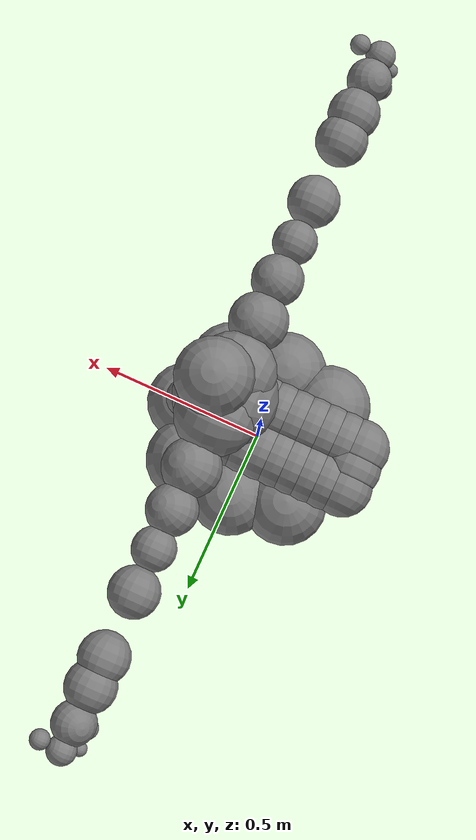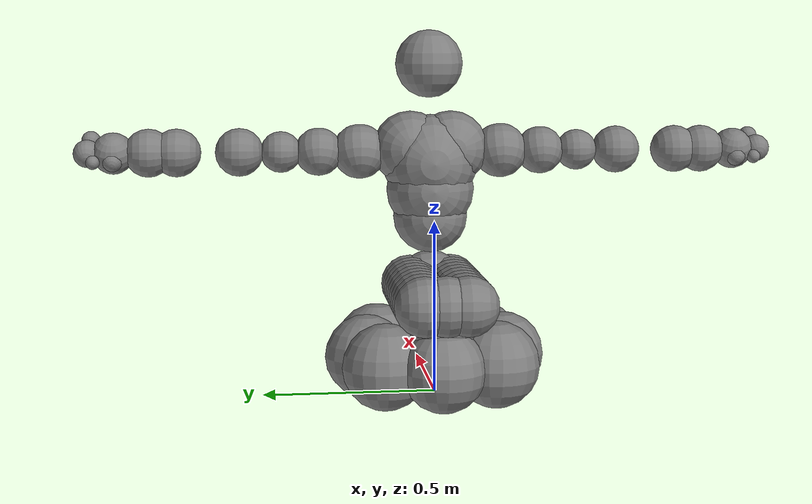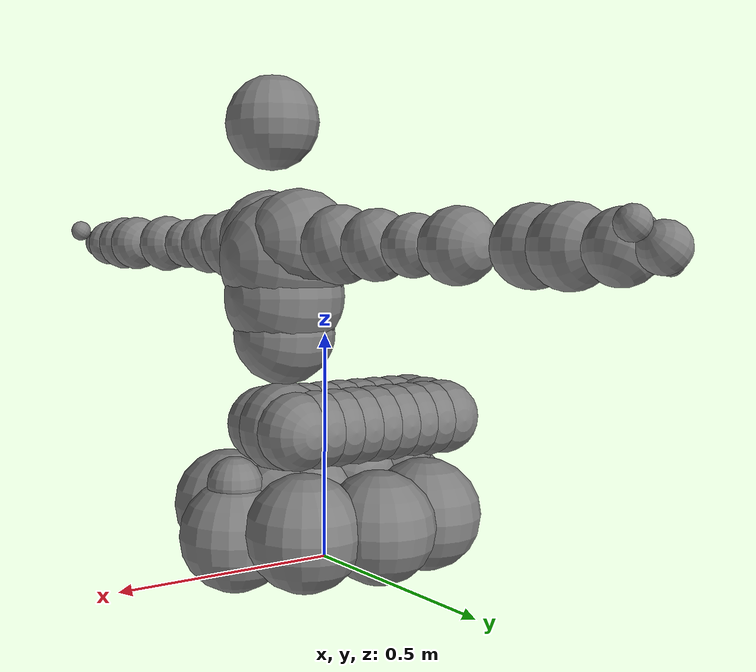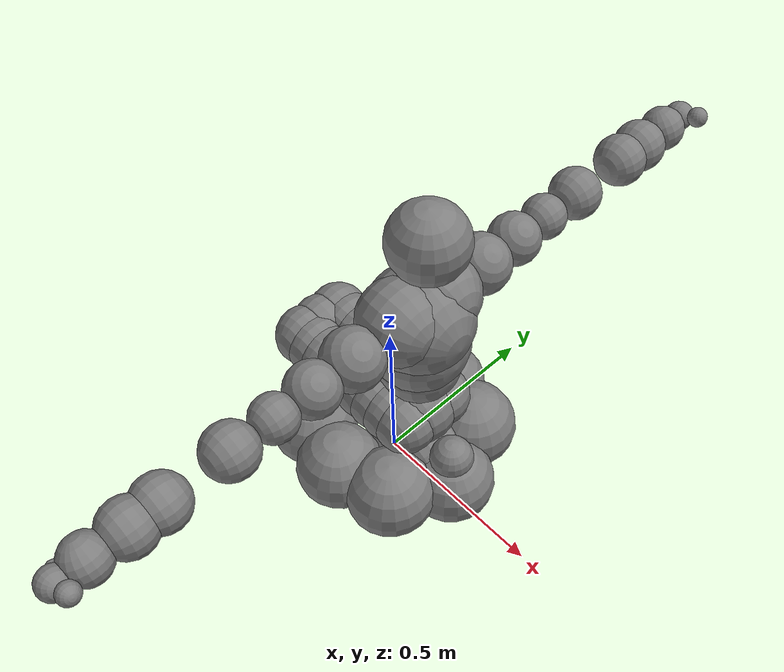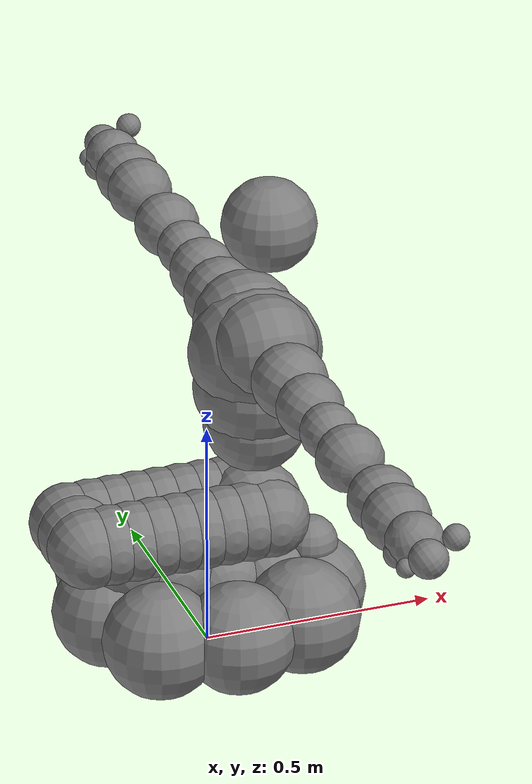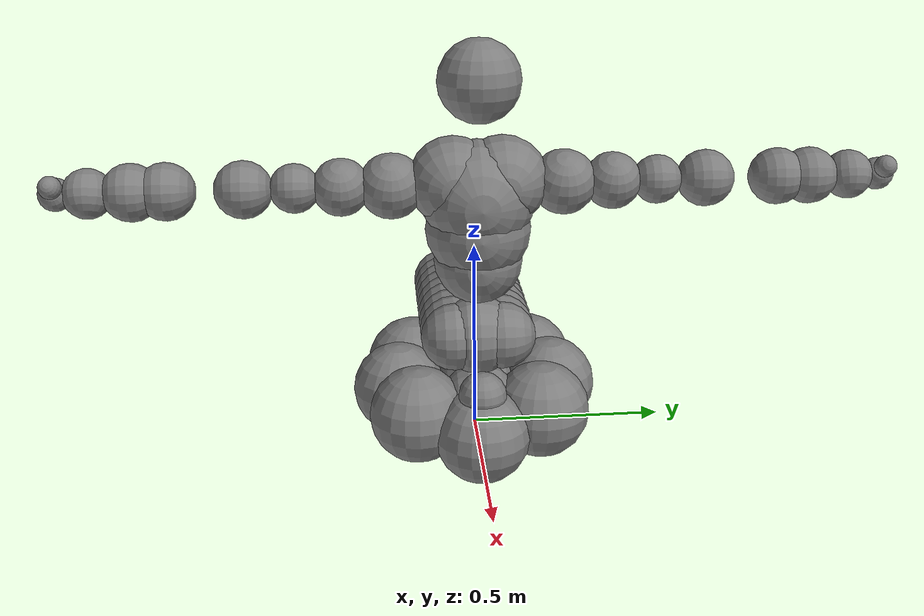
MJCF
<mujoco model="galbot_one_golf">
  <compiler angle="radian"/>

  <worldbody>
    <geom size="0.12" pos="0 -0.2 0.11"/>
    <geom size="0.12" pos="0 0.2 0.11"/>
    <geom size="0.06" pos="0.23 0 0.19"/>
    <geom size="0.12" pos="0.23 0 0.08"/>
    <geom size="0.12" pos="-0.219 0 0.11"/>
    <geom size="0.124" pos="-0.157 -0.157 0.11"/>
    <geom size="0.123" pos="0.157 0.157 0.11"/>
    <geom size="0.123" pos="-0.157 0.157 0.11"/>
    <geom size="0.123" pos="0.157 -0.157 0.11"/>
    <body name="leg_link1" pos="0.134 0 0.1325" quat="-0.135279 0.135279 0.694046 0.694046">
      <inertial pos="0.21883 0.00219 -0.0046" quat="0.505152 0.498924 0.496342 0.499541" mass="5.28" diaginertia="0.464407 0.460835 0.0244475"/>
      <joint name="leg_joint1" pos="0 0 0" axis="0 0 1" range="0 0.9374" actuatorfrcrange="-169 169"/>
      <geom size="0.095"/>
      <geom size="0.095" pos="0.1 -0.03 0"/>
      <geom size="0.095" pos="0.22 -0.03 0"/>
      <geom size="0.095" pos="0.33 -0.03 0"/>
      <body name="leg_link2" pos="0.45 0 0" quat="0 0.19131 0.98153 0">
        <inertial pos="0.19484 0 0" quat="0.500001 0.500001 0.500047 0.499951" mass="3.3" diaginertia="0.232316 0.203237 0.0415624"/>
        <joint name="leg_joint2" pos="0 0 0" axis="0 0 1" range="0 2.5847" actuatorfrcrange="-169 169"/>
        <geom size="0.085"/>
        <geom size="0.085" pos="0 0 0.06"/>
        <geom size="0.085" pos="0 0 -0.06"/>
        <geom size="0.085" pos="0.05 0 0.06"/>
        <geom size="0.085" pos="0.05 0 -0.06"/>
        <geom size="0.085" pos="0.1 0 0.06"/>
        <geom size="0.085" pos="0.1 0 -0.06"/>
        <geom size="0.085" pos="0.15 0 0.06"/>
        <geom size="0.085" pos="0.15 0 -0.06"/>
        <geom size="0.085" pos="0.2 0 0.06"/>
        <geom size="0.085" pos="0.2 0 -0.06"/>
        <geom size="0.085" pos="0.25 0 0.06"/>
        <geom size="0.085" pos="0.25 0 -0.06"/>
        <geom size="0.085" pos="0.3 0 0.06"/>
        <geom size="0.085" pos="0.3 0 -0.06"/>
        <geom size="0.085" pos="0.35 0 0.06"/>
        <geom size="0.085" pos="0.35 0 -0.06"/>
        <geom size="0.085" pos="0.4 0 0.06"/>
        <geom size="0.085" pos="0.4 0 -0.06"/>
        <geom size="0.085" pos="0.4 0 0"/>
        <body name="leg_link3" pos="0.39 0 0" quat="0 0 1 0">
          <inertial pos="2e-05 0.01881 -0.011" quat="0.707348 0.706863 0.00128484 -0.000928877" mass="1.76" diaginertia="0.0110244 0.0106222 0.00878281"/>
          <joint name="leg_joint3" pos="0 0 0" axis="0 0 1" range="0 2.3262" actuatorfrcrange="-84 84"/>
          <geom size="0.1"/>
          <body name="leg_link4" pos="0 0.224 0" quat="0.5 -0.5 -0.5 -0.5">
            <inertial pos="0 -0.00599 -0.06877" quat="0.707107 0.000365744 -0.000365744 0.707107" mass="0.72" diaginertia="0.00591483 0.00580757 0.00140049"/>
            <joint name="leg_joint4" pos="0 0 0" axis="0 0 1" range="-1.5906 1.5906" actuatorfrcrange="-30 30"/>
            <geom size="0.1"/>
            <body name="leg_link5" quat="0.707107 0.707107 0 0">
              <inertial pos="-0.0788442 0.0963352 -0.0395516" quat="0.438761 0.345678 -0.662967 0.498468" mass="6.03" diaginertia="0.368979 0.292426 0.0977147"/>
              <joint name="leg_joint5" pos="0 0 0" axis="0 0 1" range="-0.1645 0.1645" actuatorfrcrange="-30 30"/>
              <geom size="0.14" pos="0 0.14 0"/>
              <geom size="0.13" pos="0 0.06 0"/>
              <geom size="0.11" pos="0 -0.02 0"/>
              <geom size="0.11" pos="-0.06 0.18 0"/>
              <geom size="0.11" pos="0.06 0.18 0"/>
              <body name="left_arm_link1" pos="0.20843 0.172 0" quat="0.683013 0.183013 0.683013 0.183013">
                <inertial pos="0 0.00097 -0.01539" quat="0.79715 0.00675234 -0.00525079 0.60372" mass="1.6" diaginertia="0.00339705 0.00332448 0.00165189"/>
                <joint name="left_arm_joint1" pos="0 0 0" axis="0 0 1" range="-3.00433 3.00433" actuatorfrcrange="-60 60"/>
                <geom size="0.06"/>
                <body name="left_arm_link2" quat="0 0 0.707107 0.707107">
                  <inertial pos="0 0.09558 0.01015" quat="0.711079 0.703112 -9.72025e-05 0.000106239" mass="1.43" diaginertia="0.0193788 0.018954 0.00157693"/>
                  <joint name="left_arm_joint2" pos="0 0 0" axis="0 0 1" range="-1.60806 1.60806" actuatorfrcrange="-60 60"/>
                  <geom size="0.08"/>
                  <geom size="0.07" pos="0 0.12 0"/>
                  <body name="left_arm_link3" pos="0 0.35 0" quat="-0.353553 0.353553 -0.612372 -0.612372">
                    <inertial pos="0 0.00088 -0.04936" quat="0.999988 0.00482265 -4.48243e-05 0.000919392" mass="1.43" diaginertia="0.0118746 0.0117886 0.00137053"/>
                    <joint name="left_arm_joint3" pos="0 0 0" axis="0 0 1" range="-2.91697 2.91697" actuatorfrcrange="-30 30"/>
                    <geom size="0.06" pos="0 0 -0.12"/>
                    <geom size="0.07"/>
                    <body name="left_arm_link4" quat="0 0 -0.707107 -0.707107">
                      <inertial pos="0 0.05614 0.01917" quat="0.731102 0.682267 -0.000806243 0.000896297" mass="1.1" diaginertia="0.00701388 0.00652468 0.00159506"/>
                      <joint name="left_arm_joint4" pos="0 0 0" axis="0 0 1" range="-2.56799 1.86986" actuatorfrcrange="-30 30"/>
                      <body name="left_arm_link5" pos="0 0.36 0" quat="0.707107 -0.707107 0 0">
                        <inertial pos="0.00044 0.00169 -0.13306" quat="0.999789 0.00430973 -0.00121985 0.0200303" mass="1.15" diaginertia="0.0258109 0.0253041 0.00115654"/>
                        <joint name="left_arm_joint5" pos="0 0 0" axis="0 0 1" range="-2.91697 2.91697" actuatorfrcrange="-10 10"/>
                        <geom size="0.07" pos="0 0 -0.18"/>
                        <geom size="0.07" pos="0 0 -0.1"/>
                        <body name="left_arm_link6" quat="0.5 0.5 0.5 -0.5">
                          <inertial pos="-0.00088 -0.00727 -0.00012" quat="0.113724 0.724032 0.0888356 0.674501" mass="0.47" diaginertia="0.000297618 0.000289132 0.000275439"/>
                          <joint name="left_arm_joint6" pos="0 0 0" axis="0 0 1" range="-0.822665 0.735398" actuatorfrcrange="-10 10"/>
                          <geom size="0.06"/>
                          <body name="left_arm_link7" quat="0.707107 0.707107 0 0">
                            <inertial pos="-0.05776 -0.00675 0.01135" quat="0.450248 0.595403 0.411647 0.522798" mass="0.8" diaginertia="0.00428143 0.00419004 0.00112119"/>
                            <joint name="left_arm_joint7" pos="0 0 0" axis="0 0 1" range="-1.5382 1.5382" actuatorfrcrange="-10 10"/>
                            <geom size="0.027" pos="-0.068 0 -0.068"/>
                            <geom size="0.04" pos="-0.074 0 0"/>
                            <geom size="0.02" pos="-0.055 0 0.045"/>
                            <geom size="0.03" pos="0 0 0.04"/>
                          </body>
                        </body>
                      </body>
                    </body>
                  </body>
                </body>
              </body>
              <body name="right_arm_link1" pos="-0.20843 0.172 0" quat="-0.183013 0.683013 0.183013 -0.683013">
                <inertial pos="0 -0.00097 -0.01539" quat="0.79715 0.00675234 -0.00525079 0.60372" mass="1.6" diaginertia="0.00339705 0.00332448 0.00165189"/>
                <joint name="right_arm_joint1" pos="0 0 0" axis="0 0 1" range="-3.00433 3.00433" actuatorfrcrange="-60 60"/>
                <geom size="0.05"/>
                <body name="right_arm_link2" quat="0 0 -0.707107 0.707107">
                  <inertial pos="0 -0.09558 0.01015" quat="0.711079 0.703112 -9.72025e-05 0.000106239" mass="1.43" diaginertia="0.0193788 0.018954 0.00157693"/>
                  <joint name="right_arm_joint2" pos="0 0 0" axis="0 0 1" range="-1.60806 1.60806" actuatorfrcrange="-60 60"/>
                  <geom size="0.08"/>
                  <geom size="0.07" pos="0 -0.12 0"/>
                  <body name="right_arm_link3" pos="0 -0.35 0" quat="0.353553 0.353553 0.612372 -0.612372">
                    <inertial pos="0 -0.00088 -0.04936" quat="0.999988 0.00482265 -4.48243e-05 0.000919392" mass="1.43" diaginertia="0.0118746 0.0117886 0.00137053"/>
                    <joint name="right_arm_joint3" pos="0 0 0" axis="0 0 1" range="-2.91697 2.91697" actuatorfrcrange="-30 30"/>
                    <geom size="0.06" pos="0 0 -0.12"/>
                    <geom size="0.07"/>
                    <body name="right_arm_link4" quat="0 0 -0.707107 0.707107">
                      <inertial pos="0 -0.05614 0.01917" quat="0.731102 0.682267 -0.000806243 0.000896297" mass="1.1" diaginertia="0.00701388 0.00652468 0.00159506"/>
                      <joint name="right_arm_joint4" pos="0 0 0" axis="0 0 1" range="-1.86986 2.56799" actuatorfrcrange="-30 30"/>
                      <body name="right_arm_link5" pos="0 -0.36 0" quat="0 0 -0.707107 0.707107">
                        <inertial pos="0.00044 0.00169 -0.13306" quat="0.999789 0.00430973 -0.00121985 0.0200303" mass="1.15" diaginertia="0.0258109 0.0253041 0.00115654"/>
                        <joint name="right_arm_joint5" pos="0 0 0" axis="0 0 1" range="-2.91697 2.91697" actuatorfrcrange="-10 10"/>
                        <geom size="0.07" pos="0 0 -0.18"/>
                        <geom size="0.07" pos="0 0 -0.1"/>
                        <body name="right_arm_link6" quat="0.5 0.5 0.5 -0.5">
                          <inertial pos="-0.00088 0.00727 -0.00012" quat="0.11308 0.723412 0.0892763 0.675217" mass="0.47" diaginertia="0.000297612 0.000289132 0.000275447"/>
                          <joint name="right_arm_joint6" pos="0 0 0" axis="0 0 1" range="-0.735398 0.822665" actuatorfrcrange="-10 10"/>
                          <geom size="0.06"/>
                          <body name="right_arm_link7" quat="0.707107 -0.707107 0 0">
                            <inertial pos="-0.05751 0.00684 0.01187" quat="0.446995 0.599391 0.409465 0.522747" mass="0.8" diaginertia="0.00428335 0.00417811 0.00113043"/>
                            <joint name="right_arm_joint7" pos="0 0 0" axis="0 0 1" range="-1.5382 1.5382" actuatorfrcrange="-10 10"/>
                            <geom size="0.027" pos="-0.068 0 -0.068"/>
                            <geom size="0.04" pos="-0.074 0 0"/>
                            <geom size="0.02" pos="-0.055 0 0.045"/>
                            <geom size="0.03" pos="0 0 0.04"/>
                          </body>
                        </body>
                      </body>
                    </body>
                  </body>
                </body>
              </body>
              <body name="head_link1" pos="0 0.37711 0" quat="0.5 -0.5 -0.5 -0.5">
                <inertial pos="-2e-05 0.00709 -0.0559" quat="0.999935 0.00088794 -0.000283206 0.0113452" mass="1.5695" diaginertia="0.00690033 0.00683299 0.00116966"/>
                <joint name="head_joint1" pos="0 0 0" axis="0 0 1" range="-1.5208 1.5208" actuatorfrcrange="-4 4"/>
                <geom size="0.1" pos="0.03 0 0.05"/>
                <body name="head_link2" quat="0.707107 -0.707107 0 0">
                  <inertial pos="0.01835 -0.03348 0.00642" quat="0.294427 0.648964 -0.27986 0.643302" mass="0.81" diaginertia="5.5308e-06 5.16366e-06 2.55379e-06"/>
                  <joint name="head_joint2" pos="0 0 0" axis="0 0 1" range="-0.214346 0.493599" actuatorfrcrange="-4 4"/>
                  <geom size="0.001"/>
                </body>
              </body>
            </body>
          </body>
        </body>
      </body>
    </body>
  </worldbody>
</mujoco>
